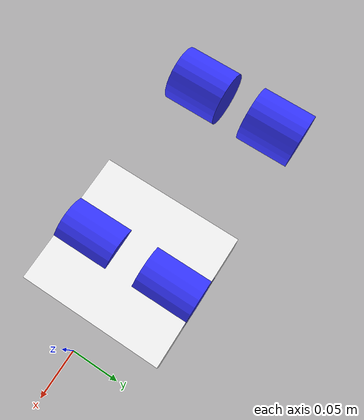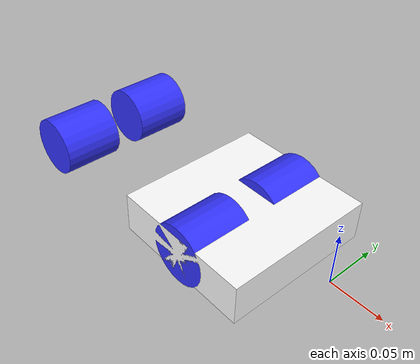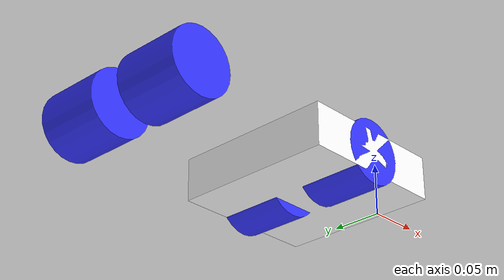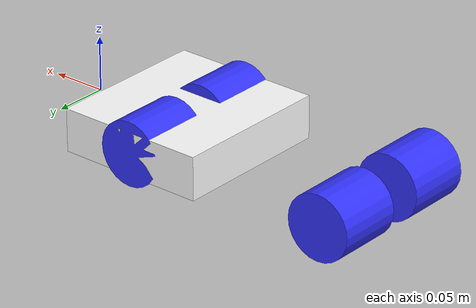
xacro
<?xml version="1.0"?>
<robot xmlns:xacro="http://www.ros.org/wiki/xacro">

    <xacro:include filename="inertial_macros.xacro"/>

    <material name="white">
        <color rgba="1 1 1 1"/>
    </material>

    <material name="black">
        <color rgba="0 0 0 1"/>
    </material>

    <material name="orange">
        <color rgba="1 0.3 0.1 0.8"/>
    </material>

    <material name="blue">
        <color rgba="0.2 0.2 1 1"/>
    </material>

    <!-- ==========================CHASSI-->

    <!-- base link -->
    <link name="base_link">
    </link>

    <!-- chassi link -->
    <link name="chassi_link">
        <visual>
            <orign xyz="0.7 0 0.04 " rpy="0 0 0"/>
            <geometry>
                <box size="0.14 0.15 0.04"/>
            </geometry>
            <material name='white'/>
        </visual>
        <collision>
            <orign xyz="0.7 0 0.04 " rpy="0 0 0"/>
            <geometry>
                <box size="0.14 0.15 0.04"/>
            </geometry>
        </collision>
        <xacro:inertial_box mass="1" x="0.14" y="0.15" z="0.04">
            <orign xyz="0.7 0 0.04 " rpy="0 0 0"/>
        </xacro:inertial_box>
    </link>

    <gazebo reference="chassi_link">
        <material>Gazebo/White</material>
    </gazebo>

    <!-- chassi joint -->
    <joint name="chassi_joint" type='fixed'>
        <parent link="base_link"/>
        <child link="chassi_link"/>
        <origin xyz="-0.1 0 0"/>
    </joint>

    <!-- ========================== BACK LEFT WHEEL -->

    <!-- back left wheel link -->
    <link name="back_left_wheel">
        <visual>
            <geometry>
                <cylinder radius="0.03" length="0.06"/>
            </geometry>
            <material name="blue"/>
        </visual>
        <collision>
            <geometry>
                <cylinder radius="0.03" length="0.06"/>
            </geometry>
        </collision>
        <xacro:inertial_cylinder mass="0.075" radius="0.03" length="0.06">
            <origin xyz="0 0 0" rpy="0 0 0"/>
        </xacro:inertial_cylinder>
    </link>

    <gazebo reference="back_left_wheel">
        <material>Gazebo/Blue</material>
    </gazebo>

    <!-- back left wheel joint -->
    <joint name="back_left_wheel_joint" type="continuous">
        <parent link="chassi_link"/>
        <child link="back_left_wheel"/>
        <origin xyz="0 0.045 0" rpy="-${pi/2} 0 0"/>
        <axis xyz="0 0 1"/>
    </joint>

    <!-- =========================== BACK RIGHT WHEEL -->

    <!-- back right wheel link -->
    <link name="back_right_wheel">
        <visual>
            <geometry>
                <cylinder radius="0.03" length="0.06"/>
            </geometry>
            <material name="blue"/>
        </visual>
        <collision>
            <geometry>
                <cylinder radius="0.03" length="0.06"/>
            </geometry>
        </collision>
        <xacro:inertial_cylinder mass="0.075" radius="0.03" length="0.06">
            <origin xyz="0 0 0" rpy="0 0 0"/>
        </xacro:inertial_cylinder>
    </link>

    <gazebo reference="back_right_wheel">
        <material>Gazebo/Blue</material>
    </gazebo>

    <!-- back right wheel joint -->
    <joint name="back_right_wheel_joint" type="continuous">
        <parent link="chassi_link"/>
        <child link="back_right_wheel"/>
        <origin xyz="0 -0.045 0" rpy="${pi/2} 0 0"/>
        <axis xyz="0 0 -1"/>
    </joint>

    <!-- ========================== FRONT LEFT WHEEL -->

    <!-- front left wheel link -->
    <link name="front_left_wheel">
        <visual>
            <geometry>
                <cylinder radius="0.03" length="0.06"/>
            </geometry>
            <material name="blue"/>
        </visual>
        <collision>
            <geometry>
                <cylinder radius="0.03" length="0.06"/>
            </geometry>
        </collision>
        <xacro:inertial_cylinder mass="0.075" radius="0.03" length="0.06">
            <origin xyz="0 0 0" rpy="0 0 0"/>
        </xacro:inertial_cylinder>
    </link>

    <gazebo reference="front_left_wheel">
        <material>Gazebo/Blue</material>
    </gazebo>

    <!-- front left wheel joint -->
    <joint name="front_left_wheel_joint" type="continuous">
        <parent link="chassi_link"/>
        <child link="front_left_wheel"/>
        <origin xyz="-0.2 0.045 0" rpy="-${pi/2} 0 0"/>
        <axis xyz="0 0 1"/>
    </joint>

    <!-- =========================== FRONT RIGHT WHEEL -->

    <!-- front right wheel link -->
    <link name="front_right_wheel">
        <visual>
            <geometry>
                <cylinder radius="0.03" length="0.06"/>
            </geometry>
            <material name="blue"/>
        </visual>
        <collision>
            <geometry>
                <cylinder radius="0.03" length="0.06"/>
            </geometry>
        </collision>
        <xacro:inertial_cylinder mass="0.075" radius="0.03" length="0.06">
            <origin xyz="0 0 0" rpy="0 0 0"/>
        </xacro:inertial_cylinder>
    </link>

    <gazebo reference="front_right_wheel">
        <material>Gazebo/Blue</material>
    </gazebo>

    <!-- front right wheel joint -->
    <joint name="front_right_wheel_joint" type="continuous">
        <parent link="chassi_link"/>
        <child link="front_right_wheel"/>
        <origin xyz="-0.2 -0.045 0" rpy="${pi/2} 0 0"/>
        <axis xyz="0 0 -1"/>
    </joint>

</robot>

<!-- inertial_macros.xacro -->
<robot xmlns:xacro="http://www.ros.org/wiki/xacro">

    <!-- https://en.wikipedia.org/wiki/List_of_moments_of_inertia -->

    <xacro:macro name="inertial_box" params="mass x y z *origin">
        <inertial>
            <xacro:insert_block name="origin"/>
            <mass value="${mass}" />
            <inertia ixx="${(1/12) * mass * (y*y+z*z)}" ixy="0.0" ixz="0.0"
                    iyy="${(1/12) * mass * (x*x+z*z)}" iyz="0.0"
                    izz="${(1/12) * mass * (x*x+y*y)}" />
        </inertial>
    </xacro:macro>

    <xacro:macro name="inertial_cylinder" params="mass length radius *origin">
        <inertial>
            <xacro:insert_block name="origin"/>
            <mass value="${mass}" />
            <inertia ixx="${(1/12) * mass * (3*radius*radius + length*length)}" ixy="0.0" ixz="0.0"
                    iyy="${(1/12) * mass * (3*radius*radius + length*length)}" iyz="0.0"
                    izz="${(1/2) * mass * (radius*radius)}" />
        </inertial>
    </xacro:macro>

</robot>
